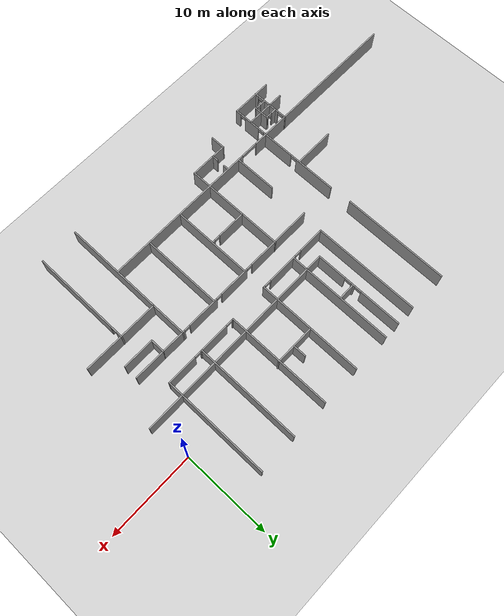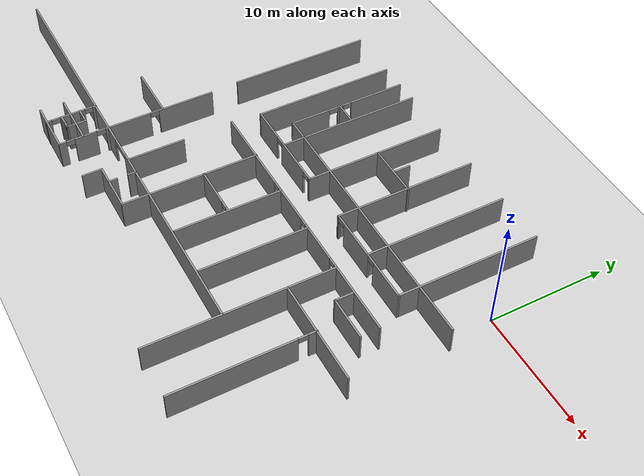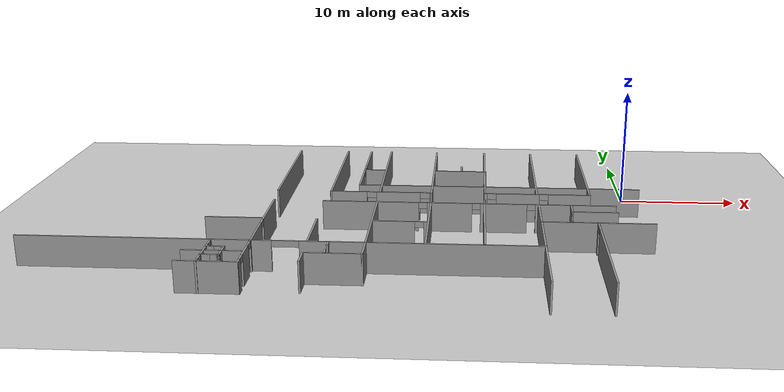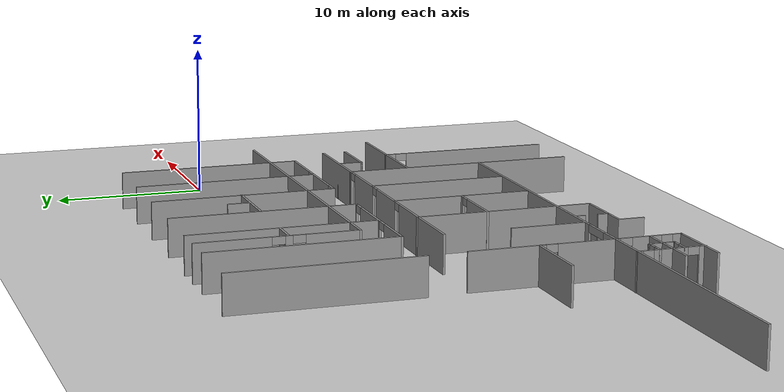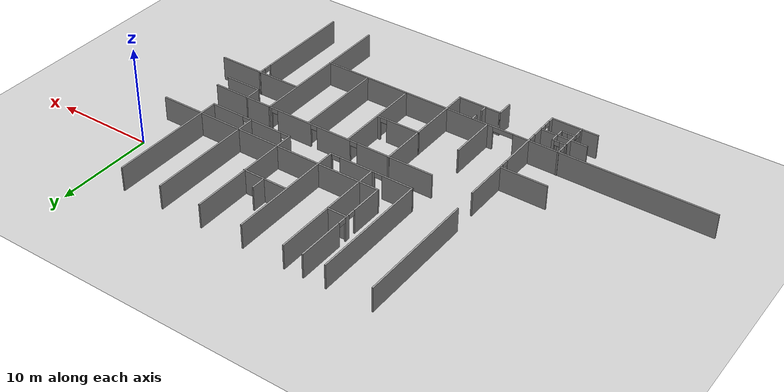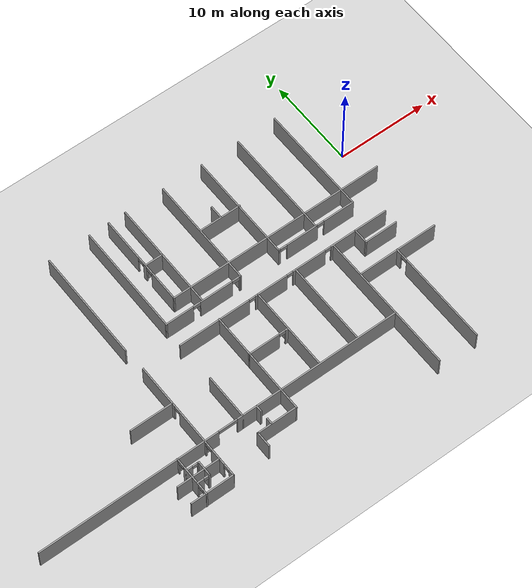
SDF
<sdf version="1.7">
 <world name="default">
  <model name="ground_plane">
   <static>1</static>
   <link name="link">
    <collision name="collision">
     <geometry><plane><normal>0 0 1</normal><size>100 100</size></plane></geometry>
     <surface>
      <contact><collide_bitmask>65535</collide_bitmask></contact>
      <friction><ode><mu>100</mu><mu2>50</mu2></ode></friction>
     </surface>
    </collision>
    <visual name="visual">
     <cast_shadows>0</cast_shadows>
     <geometry><plane><normal>0 0 1</normal><size>100 100</size></plane></geometry>
     <material>
      <script><uri>file://media/materials/scripts/gazebo.material</uri><name>Gazebo/Grey</name></script>
     </material>
    </visual>
   </link>
  </model>
  <model name="anglo_3_andar">
   <pose>-0.36557 -0.844839 0 0 -0 0</pose>
   <link name="Wall_195">
    <collision name="Wall_195_Collision">
     <geometry><box><size>12.25 0.15 2.5</size></box></geometry>
     <pose>0 0 1.25 0 -0 0</pose>
    </collision>
    <visual name="Wall_195_Visual">
     <pose>0 0 1.25 0 -0 0</pose>
     <geometry><box><size>12.25 0.15 2.5</size></box></geometry>
     <material>
      <script><uri>file://media/materials/scripts/gazebo.material</uri><name>Gazebo/Grey</name></script>
      <ambient>1 1 1 1</ambient>
     </material>
     <meta><layer>0</layer></meta>
    </visual>
    <pose>-29.8023 0.96368 0 0 -0 -1.5708</pose>
   </link>
   <link name="Wall_199">
    <collision name="Wall_199_Collision">
     <geometry><box><size>12.3301 0.15 2.5</size></box></geometry>
     <pose>0 0 1.25 0 -0 0</pose>
    </collision>
    <visual name="Wall_199_Visual">
     <pose>0 0 1.25 0 -0 0</pose>
     <geometry><box><size>12.3301 0.15 2.5</size></box></geometry>
     <material>
      <script><uri>file://media/materials/scripts/gazebo.material</uri><name>Gazebo/Grey</name></script>
      <ambient>1 1 1 1</ambient>
     </material>
     <meta><layer>0</layer></meta>
    </visual>
    <pose>-25.2023 0.92368 0 0 -0 -1.5708</pose>
   </link>
   <link name="Wall_217">
    <pose>-20.9123 -5.16632 0 0 -0 0</pose>
    <visual name="Wall_217_Visual_0">
     <pose>-2.785 0 1.25 0 -0 0</pose>
     <geometry><box><size>3.18 0.15 2.5</size></box></geometry>
     <material>
      <script><uri>file://media/materials/scripts/gazebo.material</uri><name>Gazebo/Grey</name></script>
      <ambient>1 1 1 1</ambient>
     </material>
     <meta><layer>0</layer></meta>
    </visual>
    <collision name="Wall_217_Collision_0">
     <geometry><box><size>3.18 0.15 2.5</size></box></geometry>
     <pose>-2.785 0 1.25 0 -0 0</pose>
    </collision>
    <visual name="Wall_217_Visual_1">
     <pose>1.47 0 1.25 0 -0 0</pose>
     <geometry><box><size>3.71 0.15 2.5</size></box></geometry>
     <material>
      <script><uri>file://media/materials/scripts/gazebo.material</uri><name>Gazebo/Grey</name></script>
      <ambient>1 1 1 1</ambient>
     </material>
     <meta><layer>0</layer></meta>
    </visual>
    <collision name="Wall_217_Collision_1">
     <geometry><box><size>3.71 0.15 2.5</size></box></geometry>
     <pose>1.47 0 1.25 0 -0 0</pose>
    </collision>
    <visual name="Wall_217_Visual_2">
     <pose>4.26 0 1.25 0 -0 0</pose>
     <geometry><box><size>0.230001 0.15 2.5</size></box></geometry>
     <material>
      <script><uri>file://media/materials/scripts/gazebo.material</uri><name>Gazebo/Grey</name></script>
      <ambient>1 1 1 1</ambient>
     </material>
     <meta><layer>0</layer></meta>
    </visual>
    <collision name="Wall_217_Collision_2">
     <geometry><box><size>0.230001 0.15 2.5</size></box></geometry>
     <pose>4.26 0 1.25 0 -0 0</pose>
    </collision>
    <visual name="Wall_217_Visual_3">
     <pose>-0.790001 0 2.25 0 -0 0</pose>
     <geometry><box><size>0.81 0.15 0.5</size></box></geometry>
     <material>
      <script><uri>file://media/materials/scripts/gazebo.material</uri><name>Gazebo/Grey</name></script>
      <ambient>1 1 1 1</ambient>
     </material>
     <meta><layer>0</layer></meta>
    </visual>
    <collision name="Wall_217_Collision_3">
     <geometry><box><size>0.81 0.15 0.5</size></box></geometry>
     <pose>-0.790001 0 2.25 0 -0 0</pose>
    </collision>
    <visual name="Wall_217_Visual_4">
     <pose>3.735 0 2.25 0 -0 0</pose>
     <geometry><box><size>0.82 0.15 0.5</size></box></geometry>
     <material>
      <script><uri>file://media/materials/scripts/gazebo.material</uri><name>Gazebo/Grey</name></script>
      <ambient>1 1 1 1</ambient>
     </material>
     <meta><layer>0</layer></meta>
    </visual>
    <collision name="Wall_217_Collision_4">
     <geometry><box><size>0.82 0.15 0.5</size></box></geometry>
     <pose>3.735 0 2.25 0 -0 0</pose>
    </collision>
   </link>
   <link name="Wall_220">
    <collision name="Wall_220_Collision">
     <geometry><box><size>12.3301 0.15 2.5</size></box></geometry>
     <pose>0 0 1.25 0 -0 0</pose>
    </collision>
    <visual name="Wall_220_Visual">
     <pose>0 0 1.25 0 -0 0</pose>
     <geometry><box><size>12.3301 0.15 2.5</size></box></geometry>
     <material>
      <script><uri>file://media/materials/scripts/gazebo.material</uri><name>Gazebo/Grey</name></script>
      <ambient>1 1 1 1</ambient>
     </material>
     <meta><layer>0</layer></meta>
    </visual>
    <pose>-16.6023 0.92368 0 0 -0 1.5708</pose>
   </link>
   <link name="Wall_222">
    <collision name="Wall_222_Collision">
     <geometry><box><size>12.25 0.15 2.5</size></box></geometry>
     <pose>0 0 1.25 0 -0 0</pose>
    </collision>
    <visual name="Wall_222_Visual">
     <pose>0 0 1.25 0 -0 0</pose>
     <geometry><box><size>12.25 0.15 2.5</size></box></geometry>
     <material>
      <script><uri>file://media/materials/scripts/gazebo.material</uri><name>Gazebo/Grey</name></script>
      <ambient>1 1 1 1</ambient>
     </material>
     <meta><layer>0</layer></meta>
    </visual>
    <pose>-21.0123 1.00368 0 0 -0 1.5708</pose>
   </link>
   <link name="Wall_224">
    <pose>-22.9523 1.85868 0 0 -0 1.5708</pose>
    <visual name="Wall_224_Visual_0">
     <pose>-3.4975 0 1.25 0 -0 0</pose>
     <geometry><box><size>3.505 0.15 2.5</size></box></geometry>
     <material>
      <script><uri>file://media/materials/scripts/gazebo.material</uri><name>Gazebo/Grey</name></script>
      <ambient>1 1 1 1</ambient>
     </material>
     <meta><layer>0</layer></meta>
    </visual>
    <collision name="Wall_224_Collision_0">
     <geometry><box><size>3.505 0.15 2.5</size></box></geometry>
     <pose>-3.4975 0 1.25 0 -0 0</pose>
    </collision>
    <visual name="Wall_224_Visual_1">
     <pose>-0.6925 0 1.25 0 -0 0</pose>
     <geometry><box><size>0.485 0.15 2.5</size></box></geometry>
     <material>
      <script><uri>file://media/materials/scripts/gazebo.material</uri><name>Gazebo/Grey</name></script>
      <ambient>1 1 1 1</ambient>
     </material>
     <meta><layer>0</layer></meta>
    </visual>
    <collision name="Wall_224_Collision_1">
     <geometry><box><size>0.485 0.15 2.5</size></box></geometry>
     <pose>-0.6925 0 1.25 0 -0 0</pose>
    </collision>
    <visual name="Wall_224_Visual_2">
     <pose>2.81 0 1.25 0 -0 0</pose>
     <geometry><box><size>4.88 0.15 2.5</size></box></geometry>
     <material>
      <script><uri>file://media/materials/scripts/gazebo.material</uri><name>Gazebo/Grey</name></script>
      <ambient>1 1 1 1</ambient>
     </material>
     <meta><layer>0</layer></meta>
    </visual>
    <collision name="Wall_224_Collision_2">
     <geometry><box><size>4.88 0.15 2.5</size></box></geometry>
     <pose>2.81 0 1.25 0 -0 0</pose>
    </collision>
    <visual name="Wall_224_Visual_3">
     <pose>-1.34 0 2.25 0 -0 0</pose>
     <geometry><box><size>0.81 0.15 0.5</size></box></geometry>
     <material>
      <script><uri>file://media/materials/scripts/gazebo.material</uri><name>Gazebo/Grey</name></script>
      <ambient>1 1 1 1</ambient>
     </material>
     <meta><layer>0</layer></meta>
    </visual>
    <collision name="Wall_224_Collision_3">
     <geometry><box><size>0.81 0.15 0.5</size></box></geometry>
     <pose>-1.34 0 2.25 0 -0 0</pose>
    </collision>
    <visual name="Wall_224_Visual_4">
     <pose>-0.04 0 2.25 0 -0 0</pose>
     <geometry><box><size>0.82 0.15 0.5</size></box></geometry>
     <material>
      <script><uri>file://media/materials/scripts/gazebo.material</uri><name>Gazebo/Grey</name></script>
      <ambient>1 1 1 1</ambient>
     </material>
     <meta><layer>0</layer></meta>
    </visual>
    <collision name="Wall_224_Collision_4">
     <geometry><box><size>0.82 0.15 0.5</size></box></geometry>
     <pose>-0.04 0 2.25 0 -0 0</pose>
    </collision>
   </link>
   <link name="Wall_226">
    <collision name="Wall_226_Collision">
     <geometry><box><size>24.25 0.15 2.5</size></box></geometry>
     <pose>0 0 1.25 0 -0 0</pose>
    </collision>
    <visual name="Wall_226_Visual">
     <pose>0 0 1.25 0 -0 0</pose>
     <geometry><box><size>24.25 0.15 2.5</size></box></geometry>
     <material>
      <script><uri>file://media/materials/scripts/gazebo.material</uri><name>Gazebo/Grey</name></script>
      <ambient>1 1 1 1</ambient>
     </material>
     <meta><layer>0</layer></meta>
    </visual>
    <pose>-10.9023 -3.31632 0 0 -0 0</pose>
   </link>
   <link name="Wall_228">
    <collision name="Wall_228_Collision">
     <geometry><box><size>2 0.15 2.5</size></box></geometry>
     <pose>0 0 1.25 0 -0 0</pose>
    </collision>
    <visual name="Wall_228_Visual">
     <pose>0 0 1.25 0 -0 0</pose>
     <geometry><box><size>2 0.15 2.5</size></box></geometry>
     <material>
      <script><uri>file://media/materials/scripts/gazebo.material</uri><name>Gazebo/Grey</name></script>
      <ambient>1 1 1 1</ambient>
     </material>
     <meta><layer>0</layer></meta>
    </visual>
    <pose>-21.9773 1.16368 0 0 -0 0</pose>
   </link>
   <link name="Wall_243">
    <collision name="Wall_243_Collision">
     <geometry><box><size>4.75 0.15 2.5</size></box></geometry>
     <pose>0 0 1.25 0 -0 0</pose>
    </collision>
    <visual name="Wall_243_Visual">
     <pose>0 0 1.25 0 -0 0</pose>
     <geometry><box><size>4.75 0.15 2.5</size></box></geometry>
     <material>
      <script><uri>file://media/materials/scripts/gazebo.material</uri><name>Gazebo/Grey</name></script>
      <ambient>1 1 1 1</ambient>
     </material>
     <meta><layer>0</layer></meta>
    </visual>
    <pose>-14.2623 1.11368 0 0 -0 0</pose>
   </link>
   <link name="Wall_245">
    <collision name="Wall_245_Collision">
     <geometry><box><size>1.5 0.15 2.5</size></box></geometry>
     <pose>0 0 1.25 0 -0 0</pose>
    </collision>
    <visual name="Wall_245_Visual">
     <pose>0 0 1.25 0 -0 0</pose>
     <geometry><box><size>1.5 0.15 2.5</size></box></geometry>
     <material>
      <script><uri>file://media/materials/scripts/gazebo.material</uri><name>Gazebo/Grey</name></script>
      <ambient>1 1 1 1</ambient>
     </material>
     <meta><layer>0</layer></meta>
    </visual>
    <pose>-14.1523 1.87868 0 0 -0 -1.5708</pose>
   </link>
   <link name="Wall_250">
    <collision name="Wall_250_Collision">
     <geometry><box><size>12.25 0.15 2.5</size></box></geometry>
     <pose>0 0 1.25 0 -0 0</pose>
    </collision>
    <visual name="Wall_250_Visual">
     <pose>0 0 1.25 0 -0 0</pose>
     <geometry><box><size>12.25 0.15 2.5</size></box></geometry>
     <material>
      <script><uri>file://media/materials/scripts/gazebo.material</uri><name>Gazebo/Grey</name></script>
      <ambient>1 1 1 1</ambient>
     </material>
     <meta><layer>0</layer></meta>
    </visual>
    <pose>-12.0523 0.96368 0 0 -0 -1.5708</pose>
   </link>
   <link name="Wall_252">
    <pose>-7.62729 -5.08632 0 0 -0 0</pose>
    <visual name="Wall_252_Visual_0">
     <pose>-4.37 0 1.25 0 -0 0</pose>
     <geometry><box><size>0.26 0.15 2.5</size></box></geometry>
     <material>
      <script><uri>file://media/materials/scripts/gazebo.material</uri><name>Gazebo/Grey</name></script>
      <ambient>1 1 1 1</ambient>
     </material>
     <meta><layer>0</layer></meta>
    </visual>
    <collision name="Wall_252_Collision_0">
     <geometry><box><size>0.26 0.15 2.5</size></box></geometry>
     <pose>-4.37 0 1.25 0 -0 0</pose>
    </collision>
    <visual name="Wall_252_Visual_1">
     <pose>-1.64 0 1.25 0 -0 0</pose>
     <geometry><box><size>3.64 0.15 2.5</size></box></geometry>
     <material>
      <script><uri>file://media/materials/scripts/gazebo.material</uri><name>Gazebo/Grey</name></script>
      <ambient>1 1 1 1</ambient>
     </material>
     <meta><layer>0</layer></meta>
    </visual>
    <collision name="Wall_252_Collision_1">
     <geometry><box><size>3.64 0.15 2.5</size></box></geometry>
     <pose>-1.64 0 1.25 0 -0 0</pose>
    </collision>
    <visual name="Wall_252_Visual_2">
     <pose>2.72 0 1.25 0 -0 0</pose>
     <geometry><box><size>3.56 0.15 2.5</size></box></geometry>
     <material>
      <script><uri>file://media/materials/scripts/gazebo.material</uri><name>Gazebo/Grey</name></script>
      <ambient>1 1 1 1</ambient>
     </material>
     <meta><layer>0</layer></meta>
    </visual>
    <collision name="Wall_252_Collision_2">
     <geometry><box><size>3.56 0.15 2.5</size></box></geometry>
     <pose>2.72 0 1.25 0 -0 0</pose>
    </collision>
    <visual name="Wall_252_Visual_3">
     <pose>-3.85 0 2.25 0 -0 0</pose>
     <geometry><box><size>0.78 0.15 0.5</size></box></geometry>
     <material>
      <script><uri>file://media/materials/scripts/gazebo.material</uri><name>Gazebo/Grey</name></script>
      <ambient>1 1 1 1</ambient>
     </material>
     <meta><layer>0</layer></meta>
    </visual>
    <collision name="Wall_252_Collision_3">
     <geometry><box><size>0.78 0.15 0.5</size></box></geometry>
     <pose>-3.85 0 2.25 0 -0 0</pose>
    </collision>
    <visual name="Wall_252_Visual_4">
     <pose>0.559999 0 2.25 0 -0 0</pose>
     <geometry><box><size>0.76 0.15 0.5</size></box></geometry>
     <material>
      <script><uri>file://media/materials/scripts/gazebo.material</uri><name>Gazebo/Grey</name></script>
      <ambient>1 1 1 1</ambient>
     </material>
     <meta><layer>0</layer></meta>
    </visual>
    <collision name="Wall_252_Collision_4">
     <geometry><box><size>0.76 0.15 0.5</size></box></geometry>
     <pose>0.559999 0 2.25 0 -0 0</pose>
    </collision>
   </link>
   <link name="Wall_254">
    <collision name="Wall_254_Collision">
     <geometry><box><size>12.25 0.15 2.5</size></box></geometry>
     <pose>0 0 1.25 0 -0 0</pose>
    </collision>
    <visual name="Wall_254_Visual">
     <pose>0 0 1.25 0 -0 0</pose>
     <geometry><box><size>12.25 0.15 2.5</size></box></geometry>
     <material>
      <script><uri>file://media/materials/scripts/gazebo.material</uri><name>Gazebo/Grey</name></script>
      <ambient>1 1 1 1</ambient>
     </material>
     <meta><layer>0</layer></meta>
    </visual>
    <pose>-7.64229 0.97368 0 0 -0 -1.5708</pose>
   </link>
   <link name="Wall_256">
    <collision name="Wall_256_Collision">
     <geometry><box><size>12.25 0.15 2.5</size></box></geometry>
     <pose>0 0 1.25 0 -0 0</pose>
    </collision>
    <visual name="Wall_256_Visual">
     <pose>0 0 1.25 0 -0 0</pose>
     <geometry><box><size>12.25 0.15 2.5</size></box></geometry>
     <material>
      <script><uri>file://media/materials/scripts/gazebo.material</uri><name>Gazebo/Grey</name></script>
      <ambient>1 1 1 1</ambient>
     </material>
     <meta><layer>0</layer></meta>
    </visual>
    <pose>-3.20229 0.98368 0 0 -0 -1.5708</pose>
   </link>
   <link name="Wall_289">
    <pose>-27.6923 -17.0263 0 0 -0 0</pose>
    <visual name="Wall_289_Visual_0">
     <pose>-10.2525 0 1.25 0 -0 0</pose>
     <geometry><box><size>19.745 0.15 2.5</size></box></geometry>
     <material>
      <script><uri>file://media/materials/scripts/gazebo.material</uri><name>Gazebo/Grey</name></script>
      <ambient>1 1 1 1</ambient>
     </material>
     <meta><layer>0</layer></meta>
    </visual>
    <collision name="Wall_289_Collision_0">
     <geometry><box><size>19.745 0.15 2.5</size></box></geometry>
     <pose>-10.2525 0 1.25 0 -0 0</pose>
    </collision>
    <visual name="Wall_289_Visual_1">
     <pose>10.9125 0 1.25 0 -0 0</pose>
     <geometry><box><size>18.425 0.15 2.5</size></box></geometry>
     <material>
      <script><uri>file://media/materials/scripts/gazebo.material</uri><name>Gazebo/Grey</name></script>
      <ambient>1 1 1 1</ambient>
     </material>
     <meta><layer>0</layer></meta>
    </visual>
    <collision name="Wall_289_Collision_1">
     <geometry><box><size>18.425 0.15 2.5</size></box></geometry>
     <pose>10.9125 0 1.25 0 -0 0</pose>
    </collision>
    <visual name="Wall_289_Visual_2">
     <pose>0.66 0 2.25 0 -0 0</pose>
     <geometry><box><size>2.08 0.15 0.5</size></box></geometry>
     <material>
      <script><uri>file://media/materials/scripts/gazebo.material</uri><name>Gazebo/Grey</name></script>
      <ambient>1 1 1 1</ambient>
     </material>
     <meta><layer>0</layer></meta>
    </visual>
    <collision name="Wall_289_Collision_2">
     <geometry><box><size>2.08 0.15 0.5</size></box></geometry>
     <pose>0.66 0 2.25 0 -0 0</pose>
    </collision>
   </link>
   <link name="Wall_291">
    <pose>-29.6523 -14.4863 0 0 -0 -1.5708</pose>
    <visual name="Wall_291_Visual_0">
     <pose>-4.41 0 1.25 0 -0 0</pose>
     <geometry><box><size>4.93 0.15 2.5</size></box></geometry>
     <material>
      <script><uri>file://media/materials/scripts/gazebo.material</uri><name>Gazebo/Grey</name></script>
      <ambient>1 1 1 1</ambient>
     </material>
     <meta><layer>0</layer></meta>
    </visual>
    <collision name="Wall_291_Collision_0">
     <geometry><box><size>4.93 0.15 2.5</size></box></geometry>
     <pose>-4.41 0 1.25 0 -0 0</pose>
    </collision>
    <visual name="Wall_291_Visual_1">
     <pose>0.810001 0 1.25 0 -0 0</pose>
     <geometry><box><size>4.01 0.15 2.5</size></box></geometry>
     <material>
      <script><uri>file://media/materials/scripts/gazebo.material</uri><name>Gazebo/Grey</name></script>
      <ambient>1 1 1 1</ambient>
     </material>
     <meta><layer>0</layer></meta>
    </visual>
    <collision name="Wall_291_Collision_1">
     <geometry><box><size>4.01 0.15 2.5</size></box></geometry>
     <pose>0.810001 0 1.25 0 -0 0</pose>
    </collision>
    <visual name="Wall_291_Visual_2">
     <pose>4.545 0 1.25 0 -0 0</pose>
     <geometry><box><size>1.9 0.15 2.5</size></box></geometry>
     <material>
      <script><uri>file://media/materials/scripts/gazebo.material</uri><name>Gazebo/Grey</name></script>
      <ambient>1 1 1 1</ambient>
     </material>
     <meta><layer>0</layer></meta>
    </visual>
    <collision name="Wall_291_Collision_2">
     <geometry><box><size>1.9 0.15 2.5</size></box></geometry>
     <pose>4.545 0 1.25 0 -0 0</pose>
    </collision>
    <visual name="Wall_291_Visual_3">
     <pose>6.555 0 1.25 0 -0 0</pose>
     <geometry><box><size>0.639999 0.15 2.5</size></box></geometry>
     <material>
      <script><uri>file://media/materials/scripts/gazebo.material</uri><name>Gazebo/Grey</name></script>
      <ambient>1 1 1 1</ambient>
     </material>
     <meta><layer>0</layer></meta>
    </visual>
    <collision name="Wall_291_Collision_3">
     <geometry><box><size>0.639999 0.15 2.5</size></box></geometry>
     <pose>6.555 0 1.25 0 -0 0</pose>
    </collision>
    <visual name="Wall_291_Visual_4">
     <pose>-1.57 0 2.25 0 -0 0</pose>
     <geometry><box><size>0.75 0.15 0.5</size></box></geometry>
     <material>
      <script><uri>file://media/materials/scripts/gazebo.material</uri><name>Gazebo/Grey</name></script>
      <ambient>1 1 1 1</ambient>
     </material>
     <meta><layer>0</layer></meta>
    </visual>
    <collision name="Wall_291_Collision_4">
     <geometry><box><size>0.75 0.15 0.5</size></box></geometry>
     <pose>-1.57 0 2.25 0 -0 0</pose>
    </collision>
    <visual name="Wall_291_Visual_5">
     <pose>3.205 0 2.25 0 -0 0</pose>
     <geometry><box><size>0.78 0.15 0.5</size></box></geometry>
     <material>
      <script><uri>file://media/materials/scripts/gazebo.material</uri><name>Gazebo/Grey</name></script>
      <ambient>1 1 1 1</ambient>
     </material>
     <meta><layer>0</layer></meta>
    </visual>
    <collision name="Wall_291_Collision_5">
     <geometry><box><size>0.78 0.15 0.5</size></box></geometry>
     <pose>3.205 0 2.25 0 -0 0</pose>
    </collision>
    <visual name="Wall_291_Visual_6">
     <pose>5.865 0 2.25 0 -0 0</pose>
     <geometry><box><size>0.74 0.15 0.5</size></box></geometry>
     <material>
      <script><uri>file://media/materials/scripts/gazebo.material</uri><name>Gazebo/Grey</name></script>
      <ambient>1 1 1 1</ambient>
     </material>
     <meta><layer>0</layer></meta>
    </visual>
    <collision name="Wall_291_Collision_6">
     <geometry><box><size>0.74 0.15 0.5</size></box></geometry>
     <pose>5.865 0 2.25 0 -0 0</pose>
    </collision>
   </link>
   <link name="Wall_310">
    <collision name="Wall_310_Collision">
     <geometry><box><size>4.75 0.15 2.5</size></box></geometry>
     <pose>0 0 1.25 0 -0 0</pose>
    </collision>
    <visual name="Wall_310_Visual">
     <pose>0 0 1.25 0 -0 0</pose>
     <geometry><box><size>4.75 0.15 2.5</size></box></geometry>
     <material>
      <script><uri>file://media/materials/scripts/gazebo.material</uri><name>Gazebo/Grey</name></script>
      <ambient>1 1 1 1</ambient>
     </material>
     <meta><layer>0</layer></meta>
    </visual>
    <pose>-31.9923 -12.1463 0 0 -0 0</pose>
   </link>
   <link name="Wall_316">
    <collision name="Wall_316_Collision">
     <geometry><box><size>4.75 0.15 2.5</size></box></geometry>
     <pose>0 0 1.25 0 -0 0</pose>
    </collision>
    <visual name="Wall_316_Visual">
     <pose>0 0 1.25 0 -0 0</pose>
     <geometry><box><size>4.75 0.15 2.5</size></box></geometry>
     <material>
      <script><uri>file://media/materials/scripts/gazebo.material</uri><name>Gazebo/Grey</name></script>
      <ambient>1 1 1 1</ambient>
     </material>
     <meta><layer>0</layer></meta>
    </visual>
    <pose>-31.9923 -21.3063 0 0 -0 0</pose>
   </link>
   <link name="Wall_318">
    <collision name="Wall_318_Collision">
     <geometry><box><size>4.75 0.15 2.5</size></box></geometry>
     <pose>0 0 1.25 0 -0 0</pose>
    </collision>
    <visual name="Wall_318_Visual">
     <pose>0 0 1.25 0 -0 0</pose>
     <geometry><box><size>4.75 0.15 2.5</size></box></geometry>
     <material>
      <script><uri>file://media/materials/scripts/gazebo.material</uri><name>Gazebo/Grey</name></script>
      <ambient>1 1 1 1</ambient>
     </material>
     <meta><layer>0</layer></meta>
    </visual>
    <pose>-31.9923 -19.2463 0 0 -0 0</pose>
   </link>
   <link name="Wall_320">
    <pose>-32.6723 -19.1713 0 0 -0 -1.5708</pose>
    <visual name="Wall_320_Visual_0">
     <pose>-2.055 0 1.25 0 -0 0</pose>
     <geometry><box><size>0.390001 0.15 2.5</size></box></geometry>
     <material>
      <script><uri>file://media/materials/scripts/gazebo.material</uri><name>Gazebo/Grey</name></script>
      <ambient>1 1 1 1</ambient>
     </material>
     <meta><layer>0</layer></meta>
    </visual>
    <collision name="Wall_320_Collision_0">
     <geometry><box><size>0.390001 0.15 2.5</size></box></geometry>
     <pose>-2.055 0 1.25 0 -0 0</pose>
    </collision>
    <visual name="Wall_320_Visual_1">
     <pose>-0.08 0 1.25 0 -0 0</pose>
     <geometry><box><size>2.18 0.15 2.5</size></box></geometry>
     <material>
      <script><uri>file://media/materials/scripts/gazebo.material</uri><name>Gazebo/Grey</name></script>
      <ambient>1 1 1 1</ambient>
     </material>
     <meta><layer>0</layer></meta>
    </visual>
    <collision name="Wall_320_Collision_1">
     <geometry><box><size>2.18 0.15 2.5</size></box></geometry>
     <pose>-0.08 0 1.25 0 -0 0</pose>
    </collision>
    <visual name="Wall_320_Visual_2">
     <pose>1.995 0 1.25 0 -0 0</pose>
     <geometry><box><size>0.51 0.15 2.5</size></box></geometry>
     <material>
      <script><uri>file://media/materials/scripts/gazebo.material</uri><name>Gazebo/Grey</name></script>
      <ambient>1 1 1 1</ambient>
     </material>
     <meta><layer>0</layer></meta>
    </visual>
    <collision name="Wall_320_Collision_2">
     <geometry><box><size>0.51 0.15 2.5</size></box></geometry>
     <pose>1.995 0 1.25 0 -0 0</pose>
    </collision>
    <visual name="Wall_320_Visual_3">
     <pose>-1.515 0 2.25 0 -0 0</pose>
     <geometry><box><size>0.69 0.15 0.5</size></box></geometry>
     <material>
      <script><uri>file://media/materials/scripts/gazebo.material</uri><name>Gazebo/Grey</name></script>
      <ambient>1 1 1 1</ambient>
     </material>
     <meta><layer>0</layer></meta>
    </visual>
    <collision name="Wall_320_Collision_3">
     <geometry><box><size>0.69 0.15 0.5</size></box></geometry>
     <pose>-1.515 0 2.25 0 -0 0</pose>
    </collision>
    <visual name="Wall_320_Visual_4">
     <pose>1.375 0 2.25 0 -0 0</pose>
     <geometry><box><size>0.73 0.15 0.5</size></box></geometry>
     <material>
      <script><uri>file://media/materials/scripts/gazebo.material</uri><name>Gazebo/Grey</name></script>
      <ambient>1 1 1 1</ambient>
     </material>
     <meta><layer>0</layer></meta>
    </visual>
    <collision name="Wall_320_Collision_4">
     <geometry><box><size>0.73 0.15 0.5</size></box></geometry>
     <pose>1.375 0 2.25 0 -0 0</pose>
    </collision>
   </link>
   <link name="Wall_322">
    <pose>-31.9973 -18.4063 0 0 -0 0</pose>
    <visual name="Wall_322_Visual_0">
     <pose>-0.4025 0 1.25 0 -0 0</pose>
     <geometry><box><size>0.695 0.15 2.5</size></box></geometry>
     <material>
      <script><uri>file://media/materials/scripts/gazebo.material</uri><name>Gazebo/Grey</name></script>
      <ambient>1 1 1 1</ambient>
     </material>
     <meta><layer>0</layer></meta>
    </visual>
    <collision name="Wall_322_Collision_0">
     <geometry><box><size>0.695 0.15 2.5</size></box></geometry>
     <pose>-0.4025 0 1.25 0 -0 0</pose>
    </collision>
    <visual name="Wall_322_Visual_1">
     <pose>0.6175 0 1.25 0 -0 0</pose>
     <geometry><box><size>0.265 0.15 2.5</size></box></geometry>
     <material>
      <script><uri>file://media/materials/scripts/gazebo.material</uri><name>Gazebo/Grey</name></script>
      <ambient>1 1 1 1</ambient>
     </material>
     <meta><layer>0</layer></meta>
    </visual>
    <collision name="Wall_322_Collision_1">
     <geometry><box><size>0.265 0.15 2.5</size></box></geometry>
     <pose>0.6175 0 1.25 0 -0 0</pose>
    </collision>
    <visual name="Wall_322_Visual_2">
     <pose>0.215 0 2.25 0 -0 0</pose>
     <geometry><box><size>0.54 0.15 0.5</size></box></geometry>
     <material>
      <script><uri>file://media/materials/scripts/gazebo.material</uri><name>Gazebo/Grey</name></script>
      <ambient>1 1 1 1</ambient>
     </material>
     <meta><layer>0</layer></meta>
    </visual>
    <collision name="Wall_322_Collision_2">
     <geometry><box><size>0.54 0.15 0.5</size></box></geometry>
     <pose>0.215 0 2.25 0 -0 0</pose>
    </collision>
   </link>
   <link name="Wall_323">
    <collision name="Wall_323_Collision">
     <geometry><box><size>1.75 0.15 2.5</size></box></geometry>
     <pose>0 0 1.25 0 -0 0</pose>
    </collision>
    <visual name="Wall_323_Visual">
     <pose>0 0 1.25 0 -0 0</pose>
     <geometry><box><size>1.75 0.15 2.5</size></box></geometry>
     <material>
      <script><uri>file://media/materials/scripts/gazebo.material</uri><name>Gazebo/Grey</name></script>
      <ambient>1 1 1 1</ambient>
     </material>
     <meta><layer>0</layer></meta>
    </visual>
    <pose>-31.3223 -19.2063 0 0 -0 -1.5708</pose>
   </link>
   <link name="Wall_324">
    <pose>-31.9973 -20.0063 0 0 -0 3.14159</pose>
    <visual name="Wall_324_Visual_0">
     <pose>-0.639999 0 1.25 0 -0 0</pose>
     <geometry><box><size>0.220001 0.15 2.5</size></box></geometry>
     <material>
      <script><uri>file://media/materials/scripts/gazebo.material</uri><name>Gazebo/Grey</name></script>
      <ambient>1 1 1 1</ambient>
     </material>
     <meta><layer>0</layer></meta>
    </visual>
    <collision name="Wall_324_Collision_0">
     <geometry><box><size>0.220001 0.15 2.5</size></box></geometry>
     <pose>-0.639999 0 1.25 0 -0 0</pose>
    </collision>
    <visual name="Wall_324_Visual_1">
     <pose>0.360001 0 1.25 0 -0 0</pose>
     <geometry><box><size>0.779999 0.15 2.5</size></box></geometry>
     <material>
      <script><uri>file://media/materials/scripts/gazebo.material</uri><name>Gazebo/Grey</name></script>
      <ambient>1 1 1 1</ambient>
     </material>
     <meta><layer>0</layer></meta>
    </visual>
    <collision name="Wall_324_Collision_1">
     <geometry><box><size>0.779999 0.15 2.5</size></box></geometry>
     <pose>0.360001 0 1.25 0 -0 0</pose>
    </collision>
    <visual name="Wall_324_Visual_2">
     <pose>-0.279999 0 2.25 0 -0 0</pose>
     <geometry><box><size>0.5 0.15 0.5</size></box></geometry>
     <material>
      <script><uri>file://media/materials/scripts/gazebo.material</uri><name>Gazebo/Grey</name></script>
      <ambient>1 1 1 1</ambient>
     </material>
     <meta><layer>0</layer></meta>
    </visual>
    <collision name="Wall_324_Collision_2">
     <geometry><box><size>0.5 0.15 0.5</size></box></geometry>
     <pose>-0.279999 0 2.25 0 -0 0</pose>
    </collision>
   </link>
   <link name="Wall_326">
    <collision name="Wall_326_Collision">
     <geometry><box><size>5 0.15 2.5</size></box></geometry>
     <pose>0 0 1.25 0 -0 0</pose>
    </collision>
    <visual name="Wall_326_Visual">
     <pose>0 0 1.25 0 -0 0</pose>
     <geometry><box><size>5 0.15 2.5</size></box></geometry>
     <material>
      <script><uri>file://media/materials/scripts/gazebo.material</uri><name>Gazebo/Grey</name></script>
      <ambient>1 1 1 1</ambient>
     </material>
     <meta><layer>0</layer></meta>
    </visual>
    <pose>-25.3823 -14.6013 0 0 -0 -1.5708</pose>
   </link>
   <link name="Wall_330">
    <collision name="Wall_330_Collision">
     <geometry><box><size>0.75 0.15 2.5</size></box></geometry>
     <pose>0 0 1.25 0 -0 0</pose>
    </collision>
    <visual name="Wall_330_Visual">
     <pose>0 0 1.25 0 -0 0</pose>
     <geometry><box><size>0.75 0.15 2.5</size></box></geometry>
     <material>
      <script><uri>file://media/materials/scripts/gazebo.material</uri><name>Gazebo/Grey</name></script>
      <ambient>1 1 1 1</ambient>
     </material>
     <meta><layer>0</layer></meta>
    </visual>
    <pose>-23.7823 -17.3363 0 0 -0 -1.5708</pose>
   </link>
   <link name="Wall_332">
    <collision name="Wall_332_Collision">
     <geometry><box><size>0.75 0.15 2.5</size></box></geometry>
     <pose>0 0 1.25 0 -0 0</pose>
    </collision>
    <visual name="Wall_332_Visual">
     <pose>0 0 1.25 0 -0 0</pose>
     <geometry><box><size>0.75 0.15 2.5</size></box></geometry>
     <material>
      <script><uri>file://media/materials/scripts/gazebo.material</uri><name>Gazebo/Grey</name></script>
      <ambient>1 1 1 1</ambient>
     </material>
     <meta><layer>0</layer></meta>
    </visual>
    <pose>-23.7923 -18.9463 0 0 -0 -1.5708</pose>
   </link>
   <link name="Wall_334">
    <collision name="Wall_334_Collision">
     <geometry><box><size>1.75 0.15 2.5</size></box></geometry>
     <pose>0 0 1.25 0 -0 0</pose>
    </collision>
    <visual name="Wall_334_Visual">
     <pose>0 0 1.25 0 -0 0</pose>
     <geometry><box><size>1.75 0.15 2.5</size></box></geometry>
     <material>
      <script><uri>file://media/materials/scripts/gazebo.material</uri><name>Gazebo/Grey</name></script>
      <ambient>1 1 1 1</ambient>
     </material>
     <meta><layer>0</layer></meta>
    </visual>
    <pose>-25.3523 -20.0863 0 0 -0 1.5708</pose>
   </link>
   <link name="Wall_336">
    <collision name="Wall_336_Collision">
     <geometry><box><size>4.5 0.15 2.5</size></box></geometry>
     <pose>0 0 1.25 0 -0 0</pose>
    </collision>
    <visual name="Wall_336_Visual">
     <pose>0 0 1.25 0 -0 0</pose>
     <geometry><box><size>4.5 0.15 2.5</size></box></geometry>
     <material>
      <script><uri>file://media/materials/scripts/gazebo.material</uri><name>Gazebo/Grey</name></script>
      <ambient>1 1 1 1</ambient>
     </material>
     <meta><layer>0</layer></meta>
    </visual>
    <pose>-23.1773 -19.2863 0 0 -0 0</pose>
   </link>
   <link name="Wall_338">
    <collision name="Wall_338_Collision">
     <geometry><box><size>11.75 0.15 2.5</size></box></geometry>
     <pose>0 0 1.25 0 -0 0</pose>
    </collision>
    <visual name="Wall_338_Visual">
     <pose>0 0 1.25 0 -0 0</pose>
     <geometry><box><size>11.75 0.15 2.5</size></box></geometry>
     <material>
      <script><uri>file://media/materials/scripts/gazebo.material</uri><name>Gazebo/Grey</name></script>
      <ambient>1 1 1 1</ambient>
     </material>
     <meta><layer>0</layer></meta>
    </visual>
    <pose>-21.0023 -13.4863 0 0 -0 1.5708</pose>
   </link>
   <link name="Wall_340">
    <pose>-13.4323 -7.73632 0 0 -0 0</pose>
    <visual name="Wall_340_Visual_0">
     <pose>-8.1275 0 1.25 0 -0 0</pose>
     <geometry><box><size>7.995 0.15 2.5</size></box></geometry>
     <material>
      <script><uri>file://media/materials/scripts/gazebo.material</uri><name>Gazebo/Grey</name></script>
      <ambient>1 1 1 1</ambient>
     </material>
     <meta><layer>0</layer></meta>
    </visual>
    <collision name="Wall_340_Collision_0">
     <geometry><box><size>7.995 0.15 2.5</size></box></geometry>
     <pose>-8.1275 0 1.25 0 -0 0</pose>
    </collision>
    <visual name="Wall_340_Visual_1">
     <pose>-1.5475 0 1.25 0 -0 0</pose>
     <geometry><box><size>3.705 0.15 2.5</size></box></geometry>
     <material>
      <script><uri>file://media/materials/scripts/gazebo.material</uri><name>Gazebo/Grey</name></script>
      <ambient>1 1 1 1</ambient>
     </material>
     <meta><layer>0</layer></meta>
    </visual>
    <collision name="Wall_340_Collision_1">
     <geometry><box><size>3.705 0.15 2.5</size></box></geometry>
     <pose>-1.5475 0 1.25 0 -0 0</pose>
    </collision>
    <visual name="Wall_340_Visual_2">
     <pose>2.905 0 1.25 0 -0 0</pose>
     <geometry><box><size>3.84 0.15 2.5</size></box></geometry>
     <material>
      <script><uri>file://media/materials/scripts/gazebo.material</uri><name>Gazebo/Grey</name></script>
      <ambient>1 1 1 1</ambient>
     </material>
     <meta><layer>0</layer></meta>
    </visual>
    <collision name="Wall_340_Collision_2">
     <geometry><box><size>3.84 0.15 2.5</size></box></geometry>
     <pose>2.905 0 1.25 0 -0 0</pose>
    </collision>
    <visual name="Wall_340_Visual_3">
     <pose>8.82 0 1.25 0 -0 0</pose>
     <geometry><box><size>6.61 0.15 2.5</size></box></geometry>
     <material>
      <script><uri>file://media/materials/scripts/gazebo.material</uri><name>Gazebo/Grey</name></script>
      <ambient>1 1 1 1</ambient>
     </material>
     <meta><layer>0</layer></meta>
    </visual>
    <collision name="Wall_340_Collision_3">
     <geometry><box><size>6.61 0.15 2.5</size></box></geometry>
     <pose>8.82 0 1.25 0 -0 0</pose>
    </collision>
    <visual name="Wall_340_Visual_4">
     <pose>-3.765 0 2.25 0 -0 0</pose>
     <geometry><box><size>0.73 0.15 0.5</size></box></geometry>
     <material>
      <script><uri>file://media/materials/scripts/gazebo.material</uri><name>Gazebo/Grey</name></script>
      <ambient>1 1 1 1</ambient>
     </material>
     <meta><layer>0</layer></meta>
    </visual>
    <collision name="Wall_340_Collision_4">
     <geometry><box><size>0.73 0.15 0.5</size></box></geometry>
     <pose>-3.765 0 2.25 0 -0 0</pose>
    </collision>
    <visual name="Wall_340_Visual_5">
     <pose>0.645 0 2.25 0 -0 0</pose>
     <geometry><box><size>0.68 0.15 0.5</size></box></geometry>
     <material>
      <script><uri>file://media/materials/scripts/gazebo.material</uri><name>Gazebo/Grey</name></script>
      <ambient>1 1 1 1</ambient>
     </material>
     <meta><layer>0</layer></meta>
    </visual>
    <collision name="Wall_340_Collision_5">
     <geometry><box><size>0.68 0.15 0.5</size></box></geometry>
     <pose>0.645 0 2.25 0 -0 0</pose>
    </collision>
    <visual name="Wall_340_Visual_6">
     <pose>5.17 0 2.25 0 -0 0</pose>
     <geometry><box><size>0.69 0.15 0.5</size></box></geometry>
     <material>
      <script><uri>file://media/materials/scripts/gazebo.material</uri><name>Gazebo/Grey</name></script>
      <ambient>1 1 1 1</ambient>
     </material>
     <meta><layer>0</layer></meta>
    </visual>
    <collision name="Wall_340_Collision_6">
     <geometry><box><size>0.69 0.15 0.5</size></box></geometry>
     <pose>5.17 0 2.25 0 -0 0</pose>
    </collision>
   </link>
   <link name="Wall_345">
    <collision name="Wall_345_Collision">
     <geometry><box><size>3.75 0.15 2.5</size></box></geometry>
     <pose>0 0 1.25 0 -0 0</pose>
    </collision>
    <visual name="Wall_345_Visual">
     <pose>0 0 1.25 0 -0 0</pose>
     <geometry><box><size>3.75 0.15 2.5</size></box></geometry>
     <material>
      <script><uri>file://media/materials/scripts/gazebo.material</uri><name>Gazebo/Grey</name></script>
      <ambient>1 1 1 1</ambient>
     </material>
     <meta><layer>0</layer></meta>
    </visual>
    <pose>-3.18229 -9.33632 0 0 -0 3.14159</pose>
   </link>
   <link name="Wall_346">
    <collision name="Wall_346_Collision">
     <geometry><box><size>1.75 0.15 2.5</size></box></geometry>
     <pose>0 0 1.25 0 -0 0</pose>
    </collision>
    <visual name="Wall_346_Visual">
     <pose>0 0 1.25 0 -0 0</pose>
     <geometry><box><size>1.75 0.15 2.5</size></box></geometry>
     <material>
      <script><uri>file://media/materials/scripts/gazebo.material</uri><name>Gazebo/Grey</name></script>
      <ambient>1 1 1 1</ambient>
     </material>
     <meta><layer>0</layer></meta>
    </visual>
    <pose>-4.98229 -8.53632 0 0 -0 1.5708</pose>
   </link>
   <link name="Wall_348">
    <collision name="Wall_348_Collision">
     <geometry><box><size>15.8 0.15 2.5</size></box></geometry>
     <pose>0 0 1.25 0 -0 0</pose>
    </collision>
    <visual name="Wall_348_Visual">
     <pose>0 0 1.25 0 -0 0</pose>
     <geometry><box><size>15.8 0.15 2.5</size></box></geometry>
     <material>
      <script><uri>file://media/materials/scripts/gazebo.material</uri><name>Gazebo/Grey</name></script>
      <ambient>1 1 1 1</ambient>
     </material>
     <meta><layer>0</layer></meta>
    </visual>
    <pose>-7.63229 -15.5613 0 0 -0 -1.5708</pose>
   </link>
   <link name="Wall_350">
    <collision name="Wall_350_Collision">
     <geometry><box><size>9 0.15 2.5</size></box></geometry>
     <pose>0 0 1.25 0 -0 0</pose>
    </collision>
    <visual name="Wall_350_Visual">
     <pose>0 0 1.25 0 -0 0</pose>
     <geometry><box><size>9 0.15 2.5</size></box></geometry>
     <material>
      <script><uri>file://media/materials/scripts/gazebo.material</uri><name>Gazebo/Grey</name></script>
      <ambient>1 1 1 1</ambient>
     </material>
     <meta><layer>0</layer></meta>
    </visual>
    <pose>-3.16729 -11.8063 0 0 -0 0</pose>
   </link>
   <link name="Wall_353">
    <collision name="Wall_353_Collision">
     <geometry><box><size>9.25 0.15 2.5</size></box></geometry>
     <pose>0 0 1.25 0 -0 0</pose>
    </collision>
    <visual name="Wall_353_Visual">
     <pose>0 0 1.25 0 -0 0</pose>
     <geometry><box><size>9.25 0.15 2.5</size></box></geometry>
     <material>
      <script><uri>file://media/materials/scripts/gazebo.material</uri><name>Gazebo/Grey</name></script>
      <ambient>1 1 1 1</ambient>
     </material>
     <meta><layer>0</layer></meta>
    </visual>
    <pose>-12.1023 -12.2963 0 0 -0 -1.5708</pose>
   </link>
   <link name="Wall_355">
    <collision name="Wall_355_Collision">
     <geometry><box><size>9.25 0.15 2.5</size></box></geometry>
     <pose>0 0 1.25 0 -0 0</pose>
    </collision>
    <visual name="Wall_355_Visual">
     <pose>0 0 1.25 0 -0 0</pose>
     <geometry><box><size>9.25 0.15 2.5</size></box></geometry>
     <material>
      <script><uri>file://media/materials/scripts/gazebo.material</uri><name>Gazebo/Grey</name></script>
      <ambient>1 1 1 1</ambient>
     </material>
     <meta><layer>0</layer></meta>
    </visual>
    <pose>-16.5323 -12.2963 0 0 -0 -1.5708</pose>
   </link>
   <link name="Wall_357">
    <pose>-18.8373 -12.3263 0 0 -0 0</pose>
    <visual name="Wall_357_Visual_0">
     <pose>-0.505 0 1.25 0 -0 0</pose>
     <geometry><box><size>3.49 0.15 2.5</size></box></geometry>
     <material>
      <script><uri>file://media/materials/scripts/gazebo.material</uri><name>Gazebo/Grey</name></script>
      <ambient>1 1 1 1</ambient>
     </material>
     <meta><layer>0</layer></meta>
    </visual>
    <collision name="Wall_357_Collision_0">
     <geometry><box><size>3.49 0.15 2.5</size></box></geometry>
     <pose>-0.505 0 1.25 0 -0 0</pose>
    </collision>
    <visual name="Wall_357_Visual_1">
     <pose>2.095 0 1.25 0 -0 0</pose>
     <geometry><box><size>0.31 0.15 2.5</size></box></geometry>
     <material>
      <script><uri>file://media/materials/scripts/gazebo.material</uri><name>Gazebo/Grey</name></script>
      <ambient>1 1 1 1</ambient>
     </material>
     <meta><layer>0</layer></meta>
    </visual>
    <collision name="Wall_357_Collision_1">
     <geometry><box><size>0.31 0.15 2.5</size></box></geometry>
     <pose>2.095 0 1.25 0 -0 0</pose>
    </collision>
    <visual name="Wall_357_Visual_2">
     <pose>1.59 0 2.25 0 -0 0</pose>
     <geometry><box><size>0.7 0.15 0.5</size></box></geometry>
     <material>
      <script><uri>file://media/materials/scripts/gazebo.material</uri><name>Gazebo/Grey</name></script>
      <ambient>1 1 1 1</ambient>
     </material>
     <meta><layer>0</layer></meta>
    </visual>
    <collision name="Wall_357_Collision_2">
     <geometry><box><size>0.7 0.15 0.5</size></box></geometry>
     <pose>1.59 0 2.25 0 -0 0</pose>
    </collision>
   </link>
   <link name="Wall_361">
    <pose>-3.20229 -17.5763 0 0 -0 -1.5708</pose>
    <visual name="Wall_361_Visual_0">
     <pose>-5.49 0 1.25 0 -0 0</pose>
     <geometry><box><size>0.769999 0.15 2.5</size></box></geometry>
     <material>
      <script><uri>file://media/materials/scripts/gazebo.material</uri><name>Gazebo/Grey</name></script>
      <ambient>1 1 1 1</ambient>
     </material>
     <meta><layer>0</layer></meta>
    </visual>
    <collision name="Wall_361_Collision_0">
     <geometry><box><size>0.769999 0.15 2.5</size></box></geometry>
     <pose>-5.49 0 1.25 0 -0 0</pose>
    </collision>
    <visual name="Wall_361_Visual_1">
     <pose>0.78 0 1.25 0 -0 0</pose>
     <geometry><box><size>10.19 0.15 2.5</size></box></geometry>
     <material>
      <script><uri>file://media/materials/scripts/gazebo.material</uri><name>Gazebo/Grey</name></script>
      <ambient>1 1 1 1</ambient>
     </material>
     <meta><layer>0</layer></meta>
    </visual>
    <collision name="Wall_361_Collision_1">
     <geometry><box><size>10.19 0.15 2.5</size></box></geometry>
     <pose>0.78 0 1.25 0 -0 0</pose>
    </collision>
    <visual name="Wall_361_Visual_2">
     <pose>-4.71 0 2.25 0 -0 0</pose>
     <geometry><box><size>0.79 0.15 0.5</size></box></geometry>
     <material>
      <script><uri>file://media/materials/scripts/gazebo.material</uri><name>Gazebo/Grey</name></script>
      <ambient>1 1 1 1</ambient>
     </material>
     <meta><layer>0</layer></meta>
    </visual>
    <collision name="Wall_361_Collision_2">
     <geometry><box><size>0.79 0.15 0.5</size></box></geometry>
     <pose>-4.71 0 2.25 0 -0 0</pose>
    </collision>
   </link>
   <static>1</static>
  </model>
 </world>
</sdf>
